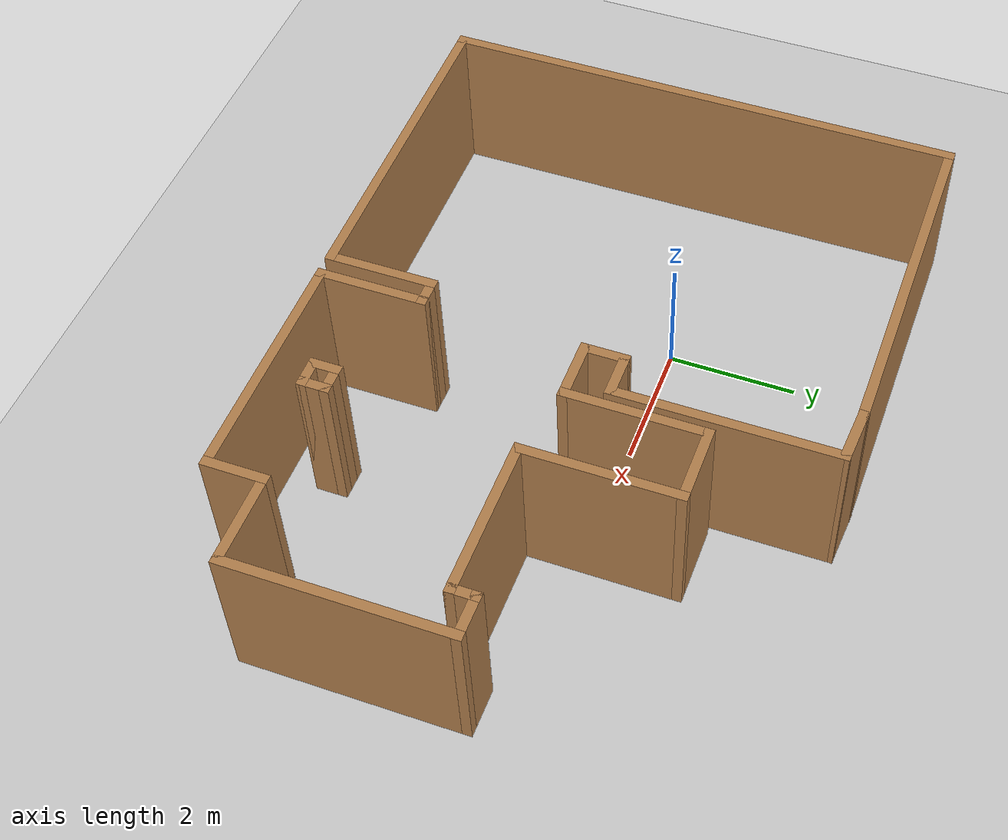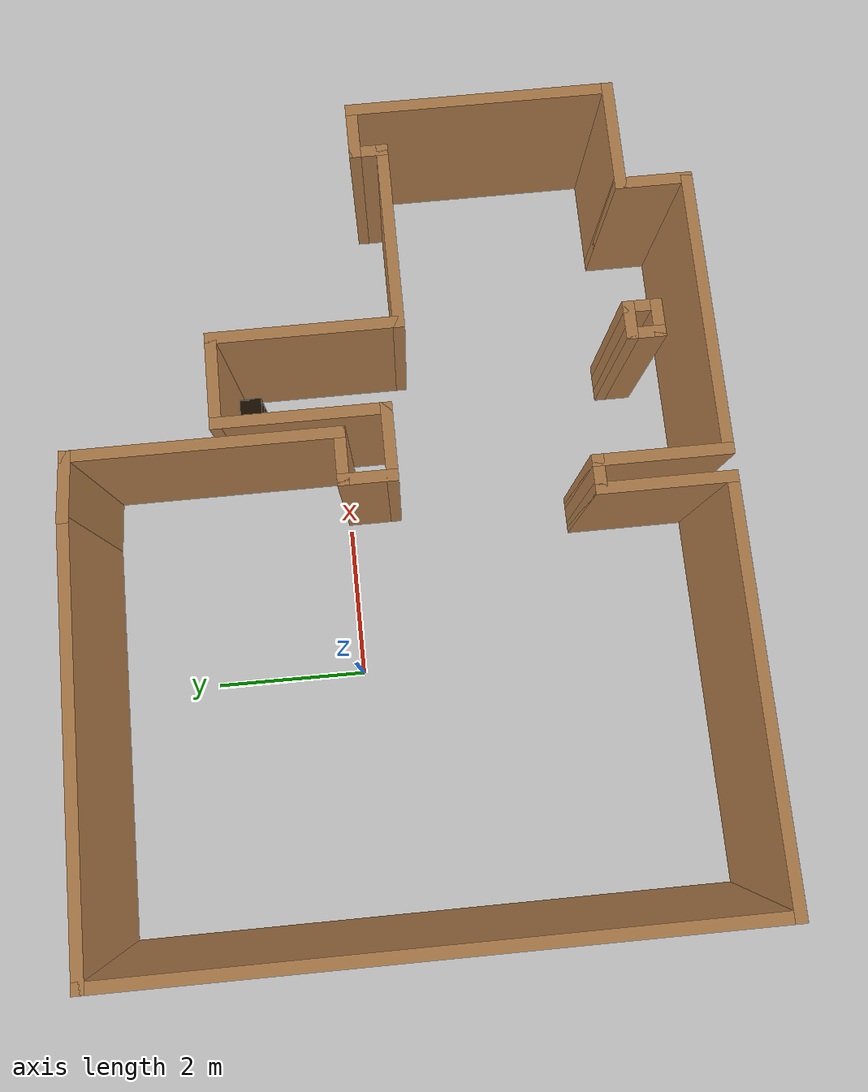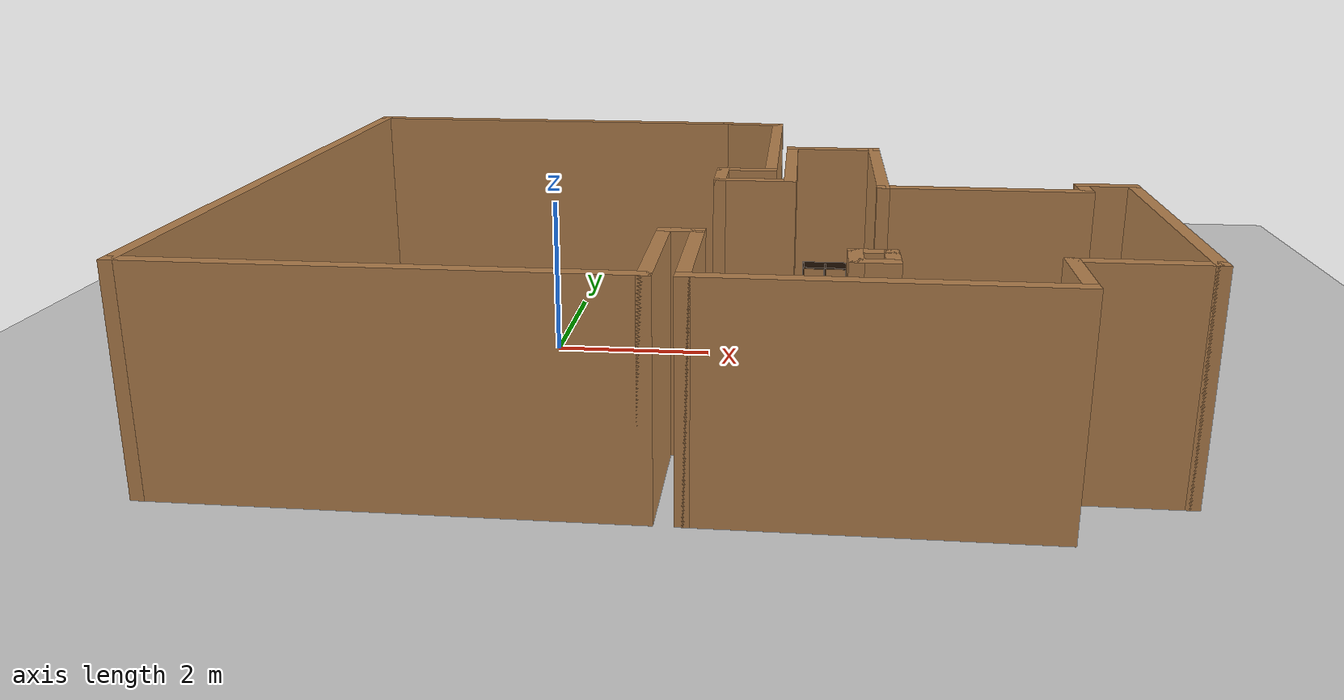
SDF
<sdf version="1.6">
 <world name="default">
  <light name="sun" type="directional">
   <pose>0 0 10 0 -0 0</pose>
   <diffuse>0.8 0.8 0.8 1</diffuse>
   <specular>0.2 0.2 0.2 1</specular>
   <attenuation>
    <range>1000</range>
    <constant>0.9</constant>
    <linear>0.01</linear>
    <quadratic>0.001</quadratic>
   </attenuation>
   <direction>-0.5 0.1 -0.9</direction>
  </light>
  <model name="ground_plane">
   <static>1</static>
   <link name="link">
    <collision name="collision">
     <geometry><plane><normal>0 0 1</normal><size>100 100</size></plane></geometry>
     <surface>
      <contact><collide_bitmask>65535</collide_bitmask></contact>
      <friction><ode><mu>100</mu><mu2>50</mu2></ode></friction>
     </surface>
    </collision>
    <visual name="visual">
     <cast_shadows>0</cast_shadows>
     <geometry><plane><normal>0 0 1</normal><size>100 100</size></plane></geometry>
     <material>
      <script><uri>file://media/materials/scripts/gazebo.material</uri><name>Gazebo/Grey</name></script>
     </material>
    </visual>
   </link>
  </model>
  <gravity>0 0 -9.8</gravity>
  <magnetic_field>6e-06 2.3e-05 -4.2e-05</magnetic_field>
  <atmosphere type="adiabatic"/>
  <physics name="default_physics" default="0" type="ode">
   <max_step_size>0.001</max_step_size>
   <real_time_factor>1</real_time_factor>
   <real_time_update_rate>1000</real_time_update_rate>
  </physics>
  <scene><ambient>0.4 0.4 0.4 1</ambient><background>0.7 0.7 0.7 1</background><shadows>1</shadows></scene>
  <audio><device>default</device></audio>
  <spherical_coordinates>
   <surface_model>EARTH_WGS84</surface_model>
   <latitude_deg>0</latitude_deg>
   <longitude_deg>0</longitude_deg>
   <elevation>0</elevation>
   <heading_deg>0</heading_deg>
  </spherical_coordinates>
  <model name="map_96">
   <pose>1.87912 -0.692799 0 0 -0 0</pose>
   <link name="Wall_0">
    <collision name="Wall_0_Collision">
     <geometry><box><size>5.5 0.15 2.5</size></box></geometry>
     <pose>0 0 1.25 0 -0 0</pose>
    </collision>
    <visual name="Wall_0_Visual">
     <pose>0 0 1.25 0 -0 0</pose>
     <geometry><box><size>5.5 0.15 2.5</size></box></geometry>
     <material>
      <script><uri>file://media/materials/scripts/gazebo.material</uri><name>Gazebo/Wood</name></script>
      <ambient>1 1 1 1</ambient>
     </material>
     <meta><layer>0</layer></meta>
    </visual>
    <pose>-2.525 4.04759 0 0 -0 3.14159</pose>
   </link>
   <link name="Wall_1">
    <collision name="Wall_1_Collision">
     <geometry><box><size>8.25 0.15 2.5</size></box></geometry>
     <pose>0 0 1.25 0 -0 0</pose>
    </collision>
    <visual name="Wall_1_Visual">
     <pose>0 0 1.25 0 -0 0</pose>
     <geometry><box><size>8.25 0.15 2.5</size></box></geometry>
     <material>
      <script><uri>file://media/materials/scripts/gazebo.material</uri><name>Gazebo/Wood</name></script>
      <ambient>1 1 1 1</ambient>
     </material>
     <meta><layer>0</layer></meta>
    </visual>
    <pose>-5.2 -0.002411 0 0 -0 -1.5708</pose>
   </link>
   <link name="Wall_10">
    <collision name="Wall_10_Collision">
     <geometry><box><size>0.75 0.15 2.5</size></box></geometry>
     <pose>0 0 1.25 0 -0 0</pose>
    </collision>
    <visual name="Wall_10_Visual">
     <pose>0 0 1.25 0 -0 0</pose>
     <geometry><box><size>0.75 0.15 2.5</size></box></geometry>
     <material>
      <script><uri>file://media/materials/scripts/gazebo.material</uri><name>Gazebo/Wood</name></script>
      <ambient>1 1 1 1</ambient>
     </material>
     <meta><layer>0</layer></meta>
    </visual>
    <pose>4.9 0.147589 0 0 -0 3.14159</pose>
   </link>
   <link name="Wall_11">
    <collision name="Wall_11_Collision">
     <geometry><box><size>0.5 0.15 2.5</size></box></geometry>
     <pose>0 0 1.25 0 -0 0</pose>
    </collision>
    <visual name="Wall_11_Visual">
     <pose>0 0 1.25 0 -0 0</pose>
     <geometry><box><size>0.5 0.15 2.5</size></box></geometry>
     <material>
      <script><uri>file://media/materials/scripts/gazebo.material</uri><name>Gazebo/Wood</name></script>
      <ambient>1 1 1 1</ambient>
     </material>
     <meta><layer>0</layer></meta>
    </visual>
    <pose>4.6 -0.027411 0 0 -0 -1.5708</pose>
   </link>
   <link name="Wall_12">
    <collision name="Wall_12_Collision">
     <geometry><box><size>2.5 0.15 2.5</size></box></geometry>
     <pose>0 0 1.25 0 -0 0</pose>
    </collision>
    <visual name="Wall_12_Visual">
     <pose>0 0 1.25 0 -0 0</pose>
     <geometry><box><size>2.5 0.15 2.5</size></box></geometry>
     <material>
      <script><uri>file://media/materials/scripts/gazebo.material</uri><name>Gazebo/Wood</name></script>
      <ambient>1 1 1 1</ambient>
     </material>
     <meta><layer>0</layer></meta>
    </visual>
    <pose>3.425 -0.202411 0 0 -0 3.14159</pose>
   </link>
   <link name="Wall_13">
    <collision name="Wall_13_Collision">
     <geometry><box><size>2.5 0.15 2.5</size></box></geometry>
     <pose>0 0 1.25 0 -0 0</pose>
    </collision>
    <visual name="Wall_13_Visual">
     <pose>0 0 1.25 0 -0 0</pose>
     <geometry><box><size>2.5 0.15 2.5</size></box></geometry>
     <material>
      <script><uri>file://media/materials/scripts/gazebo.material</uri><name>Gazebo/Wood</name></script>
      <ambient>1 1 1 1</ambient>
     </material>
     <meta><layer>0</layer></meta>
    </visual>
    <pose>2.25 0.972589 0 0 -0 1.5708</pose>
   </link>
   <link name="Wall_14">
    <collision name="Wall_14_Collision">
     <geometry><box><size>1.25 0.15 2.5</size></box></geometry>
     <pose>0 0 1.25 0 -0 0</pose>
    </collision>
    <visual name="Wall_14_Visual">
     <pose>0 0 1.25 0 -0 0</pose>
     <geometry><box><size>1.25 0.15 2.5</size></box></geometry>
     <material>
      <script><uri>file://media/materials/scripts/gazebo.material</uri><name>Gazebo/Wood</name></script>
      <ambient>1 1 1 1</ambient>
     </material>
     <meta><layer>0</layer></meta>
    </visual>
    <pose>1.7 2.14759 0 0 -0 3.14159</pose>
   </link>
   <link name="Wall_2">
    <collision name="Wall_2_Collision">
     <geometry><box><size>5.25 0.15 2.5</size></box></geometry>
     <pose>0 0 1.25 0 -0 0</pose>
    </collision>
    <visual name="Wall_2_Visual">
     <pose>0 0 1.25 0 -0 0</pose>
     <geometry><box><size>5.25 0.15 2.5</size></box></geometry>
     <material>
      <script><uri>file://media/materials/scripts/gazebo.material</uri><name>Gazebo/Wood</name></script>
      <ambient>1 1 1 1</ambient>
     </material>
     <meta><layer>0</layer></meta>
    </visual>
    <pose>-2.65 -4.05241 0 0 -0 0</pose>
   </link>
   <link name="Wall_23">
    <collision name="Wall_23_Collision">
     <geometry><box><size>2.25 0.15 2.5</size></box></geometry>
     <pose>0 0 1.25 0 -0 0</pose>
    </collision>
    <visual name="Wall_23_Visual">
     <pose>0 0 1.25 0 -0 0</pose>
     <geometry><box><size>2.25 0.15 2.5</size></box></geometry>
     <material>
      <script><uri>file://media/materials/scripts/gazebo.material</uri><name>Gazebo/Wood</name></script>
      <ambient>1 1 1 1</ambient>
     </material>
     <meta><layer>0</layer></meta>
    </visual>
    <pose>1.15 1.09759 0 0 -0 -1.5708</pose>
   </link>
   <link name="Wall_24">
    <collision name="Wall_24_Collision">
     <geometry><box><size>1 0.15 2.5</size></box></geometry>
     <pose>0 0 1.25 0 -0 0</pose>
    </collision>
    <visual name="Wall_24_Visual">
     <pose>0 0 1.25 0 -0 0</pose>
     <geometry><box><size>1 0.15 2.5</size></box></geometry>
     <material>
      <script><uri>file://media/materials/scripts/gazebo.material</uri><name>Gazebo/Wood</name></script>
      <ambient>1 1 1 1</ambient>
     </material>
     <meta><layer>0</layer></meta>
    </visual>
    <pose>0.725 0.047589 0 0 -0 3.14159</pose>
   </link>
   <link name="Wall_25">
    <collision name="Wall_25_Collision">
     <geometry><box><size>0.75 0.15 2.5</size></box></geometry>
     <pose>0 0 1.25 0 -0 0</pose>
    </collision>
    <visual name="Wall_25_Visual">
     <pose>0 0 1.25 0 -0 0</pose>
     <geometry><box><size>0.75 0.15 2.5</size></box></geometry>
     <material>
      <script><uri>file://media/materials/scripts/gazebo.material</uri><name>Gazebo/Wood</name></script>
      <ambient>1 1 1 1</ambient>
     </material>
     <meta><layer>0</layer></meta>
    </visual>
    <pose>0.3 0.347589 0 0 -0 1.5708</pose>
   </link>
   <link name="Wall_26">
    <collision name="Wall_26_Collision">
     <geometry><box><size>0.75 0.15 2.5</size></box></geometry>
     <pose>0 0 1.25 0 -0 0</pose>
    </collision>
    <visual name="Wall_26_Visual">
     <pose>0 0 1.25 0 -0 0</pose>
     <geometry><box><size>0.75 0.15 2.5</size></box></geometry>
     <material>
      <script><uri>file://media/materials/scripts/gazebo.material</uri><name>Gazebo/Wood</name></script>
      <ambient>1 1 1 1</ambient>
     </material>
     <meta><layer>0</layer></meta>
    </visual>
    <pose>0.6 0.647589 0 0 -0 0</pose>
   </link>
   <link name="Wall_27">
    <collision name="Wall_27_Collision">
     <geometry><box><size>3.5 0.15 2.5</size></box></geometry>
     <pose>0 0 1.25 0 -0 0</pose>
    </collision>
    <visual name="Wall_27_Visual">
     <pose>0 0 1.25 0 -0 0</pose>
     <geometry><box><size>3.5 0.15 2.5</size></box></geometry>
     <material>
      <script><uri>file://media/materials/scripts/gazebo.material</uri><name>Gazebo/Wood</name></script>
      <ambient>1 1 1 1</ambient>
     </material>
     <meta><layer>0</layer></meta>
    </visual>
    <pose>0.9 2.32259 0 0 -0 1.5708</pose>
   </link>
   <link name="Wall_28">
    <collision name="Wall_28_Collision">
     <geometry><box><size>0.901665 0.15 2.5</size></box></geometry>
     <pose>0 0 1.25 0 -0 0</pose>
    </collision>
    <visual name="Wall_28_Visual">
     <pose>0 0 1.25 0 -0 0</pose>
     <geometry><box><size>0.901665 0.15 2.5</size></box></geometry>
     <material>
      <script><uri>file://media/materials/scripts/gazebo.material</uri><name>Gazebo/Wood</name></script>
      <ambient>1 1 1 1</ambient>
     </material>
     <meta><layer>0</layer></meta>
    </visual>
    <pose>0.525 4.02259 0 0 -0 3.07502</pose>
   </link>
   <link name="Wall_3">
    <collision name="Wall_3_Collision">
     <geometry><box><size>1.75 0.15 2.5</size></box></geometry>
     <pose>0 0 1.25 0 -0 0</pose>
    </collision>
    <visual name="Wall_3_Visual">
     <pose>0 0 1.25 0 -0 0</pose>
     <geometry><box><size>1.75 0.15 2.5</size></box></geometry>
     <material>
      <script><uri>file://media/materials/scripts/gazebo.material</uri><name>Gazebo/Wood</name></script>
      <ambient>1 1 1 1</ambient>
     </material>
     <meta><layer>0</layer></meta>
    </visual>
    <pose>-0.1 -3.25241 0 0 -0 1.5708</pose>
   </link>
   <link name="Wall_30">
    <collision name="Wall_30_Collision">
     <geometry><box><size>0.5 0.15 2.5</size></box></geometry>
     <pose>0 0 1.25 0 -0 0</pose>
    </collision>
    <visual name="Wall_30_Visual">
     <pose>0 0 1.25 0 -0 0</pose>
     <geometry><box><size>0.5 0.15 2.5</size></box></geometry>
     <material>
      <script><uri>file://media/materials/scripts/gazebo.material</uri><name>Gazebo/Wood</name></script>
      <ambient>1 1 1 1</ambient>
     </material>
     <meta><layer>0</layer></meta>
    </visual>
    <pose>1.82581 -3.25626 0 0 -0 -1.5708</pose>
   </link>
   <link name="Wall_33">
    <collision name="Wall_33_Collision">
     <geometry><box><size>0.5 0.15 2.5</size></box></geometry>
     <pose>0 0 1.25 0 -0 0</pose>
    </collision>
    <visual name="Wall_33_Visual">
     <pose>0 0 1.25 0 -0 0</pose>
     <geometry><box><size>0.5 0.15 2.5</size></box></geometry>
     <material>
      <script><uri>file://media/materials/scripts/gazebo.material</uri><name>Gazebo/Wood</name></script>
      <ambient>1 1 1 1</ambient>
     </material>
     <meta><layer>0</layer></meta>
    </visual>
    <pose>2.00081 -3.43126 0 0 -0 0</pose>
   </link>
   <link name="Wall_34">
    <collision name="Wall_34_Collision">
     <geometry><box><size>0.5 0.15 2.5</size></box></geometry>
     <pose>0 0 1.25 0 -0 0</pose>
    </collision>
    <visual name="Wall_34_Visual">
     <pose>0 0 1.25 0 -0 0</pose>
     <geometry><box><size>0.5 0.15 2.5</size></box></geometry>
     <material>
      <script><uri>file://media/materials/scripts/gazebo.material</uri><name>Gazebo/Wood</name></script>
      <ambient>1 1 1 1</ambient>
     </material>
     <meta><layer>0</layer></meta>
    </visual>
    <pose>2.17581 -3.25626 0 0 -0 1.5708</pose>
   </link>
   <link name="Wall_35">
    <collision name="Wall_35_Collision">
     <geometry><box><size>0.5 0.15 2.5</size></box></geometry>
     <pose>0 0 1.25 0 -0 0</pose>
    </collision>
    <visual name="Wall_35_Visual">
     <pose>0 0 1.25 0 -0 0</pose>
     <geometry><box><size>0.5 0.15 2.5</size></box></geometry>
     <material>
      <script><uri>file://media/materials/scripts/gazebo.material</uri><name>Gazebo/Wood</name></script>
      <ambient>1 1 1 1</ambient>
     </material>
     <meta><layer>0</layer></meta>
    </visual>
    <pose>2.00081 -3.08127 0 0 -0 3.14159</pose>
   </link>
   <link name="Wall_4">
    <collision name="Wall_4_Collision">
     <geometry><box><size>0.5 0.15 2.5</size></box></geometry>
     <pose>0 0 1.25 0 -0 0</pose>
    </collision>
    <visual name="Wall_4_Visual">
     <pose>0 0 1.25 0 -0 0</pose>
     <geometry><box><size>0.5 0.15 2.5</size></box></geometry>
     <material>
      <script><uri>file://media/materials/scripts/gazebo.material</uri><name>Gazebo/Wood</name></script>
      <ambient>1 1 1 1</ambient>
     </material>
     <meta><layer>0</layer></meta>
    </visual>
    <pose>0.075 -2.45241 0 0 -0 0</pose>
   </link>
   <link name="Wall_5">
    <collision name="Wall_5_Collision">
     <geometry><box><size>1.75 0.15 2.5</size></box></geometry>
     <pose>0 0 1.25 0 -0 0</pose>
    </collision>
    <visual name="Wall_5_Visual">
     <pose>0 0 1.25 0 -0 0</pose>
     <geometry><box><size>1.75 0.15 2.5</size></box></geometry>
     <material>
      <script><uri>file://media/materials/scripts/gazebo.material</uri><name>Gazebo/Wood</name></script>
      <ambient>1 1 1 1</ambient>
     </material>
     <meta><layer>0</layer></meta>
    </visual>
    <pose>0.25 -3.25241 0 0 -0 -1.5708</pose>
   </link>
   <link name="Wall_6">
    <collision name="Wall_6_Collision">
     <geometry><box><size>3.75 0.15 2.5</size></box></geometry>
     <pose>0 0 1.25 0 -0 0</pose>
    </collision>
    <visual name="Wall_6_Visual">
     <pose>0 0 1.25 0 -0 0</pose>
     <geometry><box><size>3.75 0.15 2.5</size></box></geometry>
     <material>
      <script><uri>file://media/materials/scripts/gazebo.material</uri><name>Gazebo/Wood</name></script>
      <ambient>1 1 1 1</ambient>
     </material>
     <meta><layer>0</layer></meta>
    </visual>
    <pose>2.05 -4.05241 0 0 -0 0</pose>
   </link>
   <link name="Wall_7">
    <collision name="Wall_7_Collision">
     <geometry><box><size>1 0.15 2.5</size></box></geometry>
     <pose>0 0 1.25 0 -0 0</pose>
    </collision>
    <visual name="Wall_7_Visual">
     <pose>0 0 1.25 0 -0 0</pose>
     <geometry><box><size>1 0.15 2.5</size></box></geometry>
     <material>
      <script><uri>file://media/materials/scripts/gazebo.material</uri><name>Gazebo/Wood</name></script>
      <ambient>1 1 1 1</ambient>
     </material>
     <meta><layer>0</layer></meta>
    </visual>
    <pose>3.85 -3.62741 0 0 -0 1.5708</pose>
   </link>
   <link name="Wall_8">
    <collision name="Wall_8_Collision">
     <geometry><box><size>1.5 0.15 2.5</size></box></geometry>
     <pose>0 0 1.25 0 -0 0</pose>
    </collision>
    <visual name="Wall_8_Visual">
     <pose>0 0 1.25 0 -0 0</pose>
     <geometry><box><size>1.5 0.15 2.5</size></box></geometry>
     <material>
      <script><uri>file://media/materials/scripts/gazebo.material</uri><name>Gazebo/Wood</name></script>
      <ambient>1 1 1 1</ambient>
     </material>
     <meta><layer>0</layer></meta>
    </visual>
    <pose>4.525 -3.20241 0 0 -0 0</pose>
   </link>
   <link name="Wall_9">
    <collision name="Wall_9_Collision">
     <geometry><box><size>3.5 0.15 2.5</size></box></geometry>
     <pose>0 0 1.25 0 -0 0</pose>
    </collision>
    <visual name="Wall_9_Visual">
     <pose>0 0 1.25 0 -0 0</pose>
     <geometry><box><size>3.5 0.15 2.5</size></box></geometry>
     <material>
      <script><uri>file://media/materials/scripts/gazebo.material</uri><name>Gazebo/Wood</name></script>
      <ambient>1 1 1 1</ambient>
     </material>
     <meta><layer>0</layer></meta>
    </visual>
    <pose>5.2 -1.52741 0 0 -0 1.5708</pose>
   </link>
   <static>1</static>
  </model>
  <model name="6_Cube_StorageE">
   <link name="Wall_0">
    <pose>0 0 0.01 0 -0 0</pose>
    <inertial>
     <mass>1.6201</mass>
     <inertia><ixx>0.0119</ixx><iyy>0.0631</iyy><izz>0.0513</izz><ixy>0</ixy><ixz>0</ixz><iyz>0</iyz></inertia>
    </inertial>
    <collision name="Wall_0_Collision"><geometry><box><size>0.616 0.296 0.02</size></box></geometry></collision>
    <visual name="Wall_0_Visual">
     <geometry><box><size>0.616 0.296 0.02</size></box></geometry>
     <material>
      <script><uri>file://media/materials/scripts/gazebo.material</uri><name>Gazebo/Grey</name></script>
      <ambient>0.105882 0.0509804 0 1</ambient>
     </material>
    </visual>
   </link>
   <joint name="0_2" type="fixed">
    <pose>-0.308 0 0 0 -0 0</pose>
    <parent>Wall_2</parent>
    <child>Wall_0</child>
    <axis>
     <xyz>1 0 0</xyz>
     <use_parent_model_frame>0</use_parent_model_frame>
     <limit><lower>-1e+16</lower><upper>1e+16</upper></limit>
    </axis>
   </joint>
   <joint name="0_12" type="fixed">
    <parent>Wall_12</parent>
    <child>Wall_0</child>
    <axis>
     <xyz>0 0 1</xyz>
     <use_parent_model_frame>0</use_parent_model_frame>
     <limit><lower>-1e+16</lower><upper>1e+16</upper></limit>
    </axis>
   </joint>
   <joint name="0_4" type="fixed">
    <pose>0.308 0 0 0 -0 0</pose>
    <parent>Wall_4</parent>
    <child>Wall_0</child>
    <axis>
     <xyz>1 0 0</xyz>
     <use_parent_model_frame>0</use_parent_model_frame>
     <limit><lower>-1e+16</lower><upper>1e+16</upper></limit>
    </axis>
   </joint>
   <link name="Wall_10">
    <pose>0 0 0.61 0 -0 0</pose>
    <inertial>
     <mass>1.6201</mass>
     <inertia><ixx>0.0119</ixx><iyy>0.0631</iyy><izz>0.0513</izz><ixy>0</ixy><ixz>0</ixz><iyz>0</iyz></inertia>
    </inertial>
    <collision name="Wall_10_Collision"><geometry><box><size>0.616 0.296 0.02</size></box></geometry></collision>
    <visual name="Wall_10_Visual">
     <geometry><box><size>0.616 0.296 0.02</size></box></geometry>
     <material>
      <script><uri>file://media/materials/scripts/gazebo.material</uri><name>Gazebo/Grey</name></script>
      <ambient>0.105882 0.0509804 0 1</ambient>
     </material>
    </visual>
   </link>
   <joint name="10_2" type="fixed">
    <pose>-0.308 0 0 0 -0 0</pose>
    <parent>Wall_2</parent>
    <child>Wall_10</child>
    <axis>
     <xyz>1 0 0</xyz>
     <use_parent_model_frame>0</use_parent_model_frame>
     <limit><lower>-1e+16</lower><upper>1e+16</upper></limit>
    </axis>
   </joint>
   <joint name="10_12" type="fixed">
    <parent>Wall_12</parent>
    <child>Wall_10</child>
    <axis>
     <xyz>0 0 1</xyz>
     <use_parent_model_frame>0</use_parent_model_frame>
     <limit><lower>-1e+16</lower><upper>1e+16</upper></limit>
    </axis>
   </joint>
   <joint name="10_4" type="fixed">
    <pose>0.308 0 0 0 -0 0</pose>
    <parent>Wall_4</parent>
    <child>Wall_10</child>
    <axis>
     <xyz>1 0 0</xyz>
     <use_parent_model_frame>0</use_parent_model_frame>
     <limit><lower>-1e+16</lower><upper>1e+16</upper></limit>
    </axis>
   </joint>
   <link name="Wall_12">
    <pose>0 0 0.4575 0 -0 0</pose>
    <inertial>
     <mass>2.4065</mass>
     <inertia><ixx>0.0177</ixx><iyy>0.1855</iyy><izz>0.168</izz><ixy>0</ixy><ixz>0</ixz><iyz>0</iyz></inertia>
    </inertial>
    <collision name="Wall_12_Collision"><geometry><box><size>0.02 0.296 0.915</size></box></geometry></collision>
    <visual name="Wall_12_Visual">
     <geometry><box><size>0.02 0.296 0.915</size></box></geometry>
     <material>
      <script><uri>file://media/materials/scripts/gazebo.material</uri><name>Gazebo/Grey</name></script>
      <ambient>0.105882 0.0509804 0 1</ambient>
     </material>
    </visual>
   </link>
   <link name="Wall_2">
    <pose>-0.298 0 0.4575 0 -0 0</pose>
    <inertial>
     <mass>2.4065</mass>
     <inertia><ixx>0.0177</ixx><iyy>0.1855</iyy><izz>0.168</izz><ixy>0</ixy><ixz>0</ixz><iyz>0</iyz></inertia>
    </inertial>
    <collision name="Wall_2_Collision"><geometry><box><size>0.02 0.296 0.915</size></box></geometry></collision>
    <visual name="Wall_2_Visual">
     <geometry><box><size>0.02 0.296 0.915</size></box></geometry>
     <material>
      <script><uri>file://media/materials/scripts/gazebo.material</uri><name>Gazebo/Grey</name></script>
      <ambient>0.105882 0.0509804 0 1</ambient>
     </material>
    </visual>
   </link>
   <link name="Wall_4">
    <pose>0.298 0 0.4575 0 -0 0</pose>
    <inertial>
     <mass>2.4065</mass>
     <inertia><ixx>0.0177</ixx><iyy>0.1855</iyy><izz>0.168</izz><ixy>0</ixy><ixz>0</ixz><iyz>0</iyz></inertia>
    </inertial>
    <collision name="Wall_4_Collision"><geometry><box><size>0.02 0.296 0.915</size></box></geometry></collision>
    <visual name="Wall_4_Visual">
     <geometry><box><size>0.02 0.296 0.915</size></box></geometry>
     <material>
      <script><uri>file://media/materials/scripts/gazebo.material</uri><name>Gazebo/Grey</name></script>
      <ambient>0.105882 0.0509804 0 1</ambient>
     </material>
    </visual>
   </link>
   <link name="Wall_6">
    <pose>0 0 0.905 0 -0 0</pose>
    <inertial>
     <mass>1.6201</mass>
     <inertia><ixx>0.0119</ixx><iyy>0.0631</iyy><izz>0.0513</izz><ixy>0</ixy><ixz>0</ixz><iyz>0</iyz></inertia>
    </inertial>
    <collision name="Wall_6_Collision"><geometry><box><size>0.616 0.296 0.02</size></box></geometry></collision>
    <visual name="Wall_6_Visual">
     <geometry><box><size>0.616 0.296 0.02</size></box></geometry>
     <material>
      <script><uri>file://media/materials/scripts/gazebo.material</uri><name>Gazebo/Grey</name></script>
      <ambient>0.105882 0.0509804 0 1</ambient>
     </material>
    </visual>
   </link>
   <joint name="6_2" type="fixed">
    <pose>-0.308 0 0 0 -0 0</pose>
    <parent>Wall_2</parent>
    <child>Wall_6</child>
    <axis>
     <xyz>2 0 0</xyz>
     <use_parent_model_frame>0</use_parent_model_frame>
     <limit><lower>-1e+16</lower><upper>1e+16</upper></limit>
    </axis>
   </joint>
   <joint name="6_12" type="fixed">
    <parent>Wall_12</parent>
    <child>Wall_6</child>
    <axis>
     <xyz>0 0 1</xyz>
     <use_parent_model_frame>0</use_parent_model_frame>
     <limit><lower>-1e+16</lower><upper>1e+16</upper></limit>
    </axis>
   </joint>
   <joint name="6_4" type="fixed">
    <pose>0.308 0 0 0 -0 0</pose>
    <parent>Wall_4</parent>
    <child>Wall_6</child>
    <axis>
     <xyz>1 0 0</xyz>
     <use_parent_model_frame>0</use_parent_model_frame>
     <limit><lower>-1e+16</lower><upper>1e+16</upper></limit>
    </axis>
   </joint>
   <link name="Wall_8">
    <pose>0 0 0.305 0 -0 0</pose>
    <inertial>
     <mass>1.6201</mass>
     <inertia><ixx>0.0119</ixx><iyy>0.0631</iyy><izz>0.0513</izz><ixy>0</ixy><ixz>0</ixz><iyz>0</iyz></inertia>
    </inertial>
    <collision name="Wall_8_Collision"><geometry><box><size>0.616 0.296 0.02</size></box></geometry></collision>
    <visual name="Wall_8_Visual">
     <geometry><box><size>0.616 0.296 0.02</size></box></geometry>
     <material>
      <script><uri>file://media/materials/scripts/gazebo.material</uri><name>Gazebo/Grey</name></script>
      <ambient>0.105882 0.0509804 0 1</ambient>
     </material>
    </visual>
   </link>
   <joint name="8_2" type="fixed">
    <pose>-0.308 0 0 0 -0 0</pose>
    <parent>Wall_2</parent>
    <child>Wall_8</child>
    <axis>
     <xyz>1 0 0</xyz>
     <use_parent_model_frame>0</use_parent_model_frame>
     <limit><lower>-1e+16</lower><upper>1e+16</upper></limit>
    </axis>
   </joint>
   <joint name="8_12" type="fixed">
    <parent>Wall_12</parent>
    <child>Wall_8</child>
    <axis>
     <xyz>0 0 1</xyz>
     <use_parent_model_frame>0</use_parent_model_frame>
     <limit><lower>-1e+16</lower><upper>1e+16</upper></limit>
    </axis>
   </joint>
   <joint name="8_4" type="fixed">
    <pose>0.308 0 0 0 -0 0</pose>
    <parent>Wall_4</parent>
    <child>Wall_8</child>
    <axis>
     <xyz>1 0 0</xyz>
     <use_parent_model_frame>0</use_parent_model_frame>
     <limit><lower>-1e+16</lower><upper>1e+16</upper></limit>
    </axis>
   </joint>
   <static>1</static>
   <pose>3.51917 1.21017 0 0 -0 0</pose>
  </model>
 </world>
</sdf>
